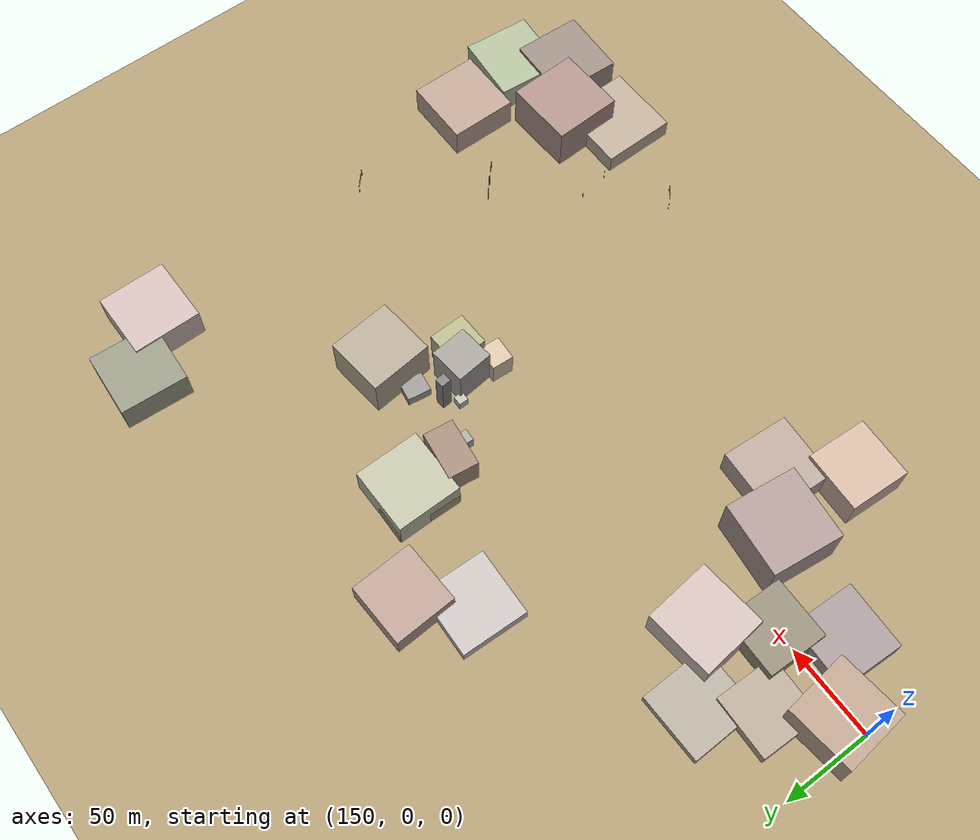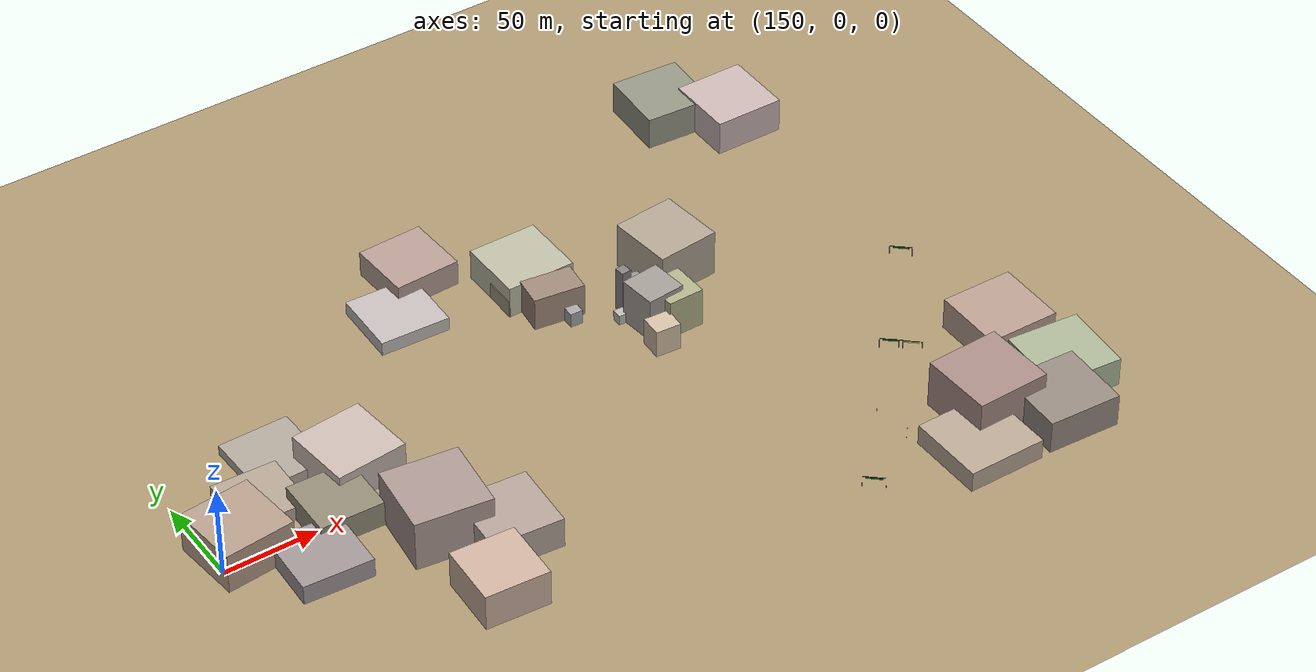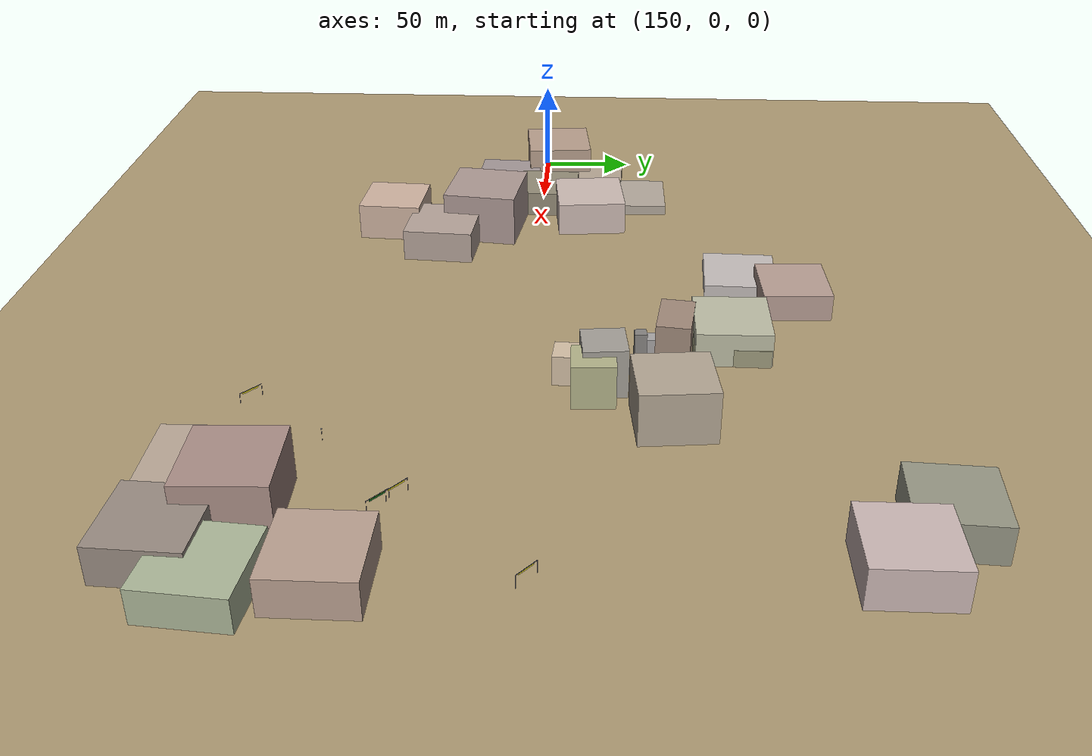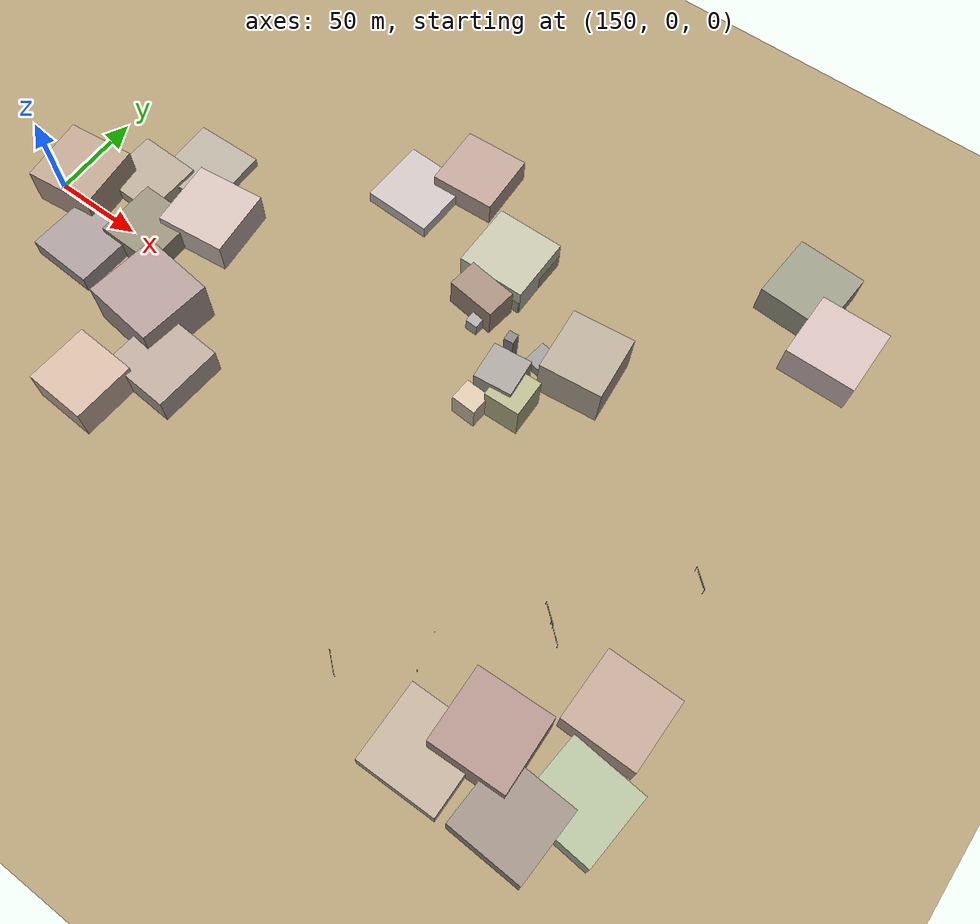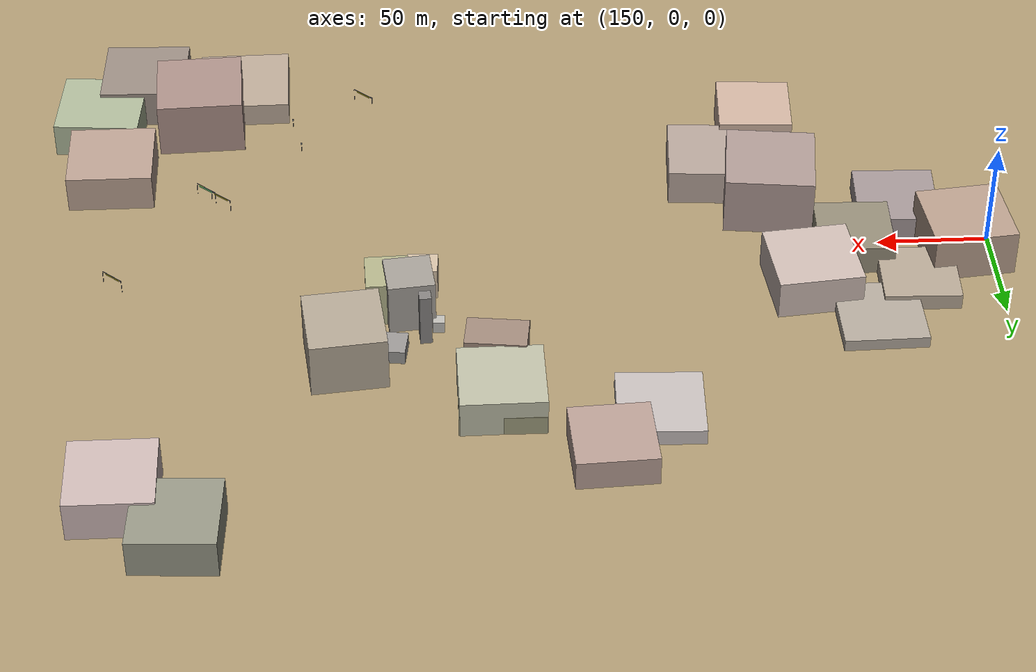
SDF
<sdf version="1.9">
 <world name="crossroad_world">
  <model name="ground_plane">
   <static>true</static>
   <pose>0 0 -0.05 0 0 0</pose>
   <link name="link">
    <collision name="collision">
     <geometry><plane><normal>0 0 1</normal><size>10000 10000</size></plane></geometry>
    </collision>
    <visual name="visual">
     <geometry><plane><normal>0 0 1</normal><size>15000 15000</size></plane></geometry>
     <material><ambient>0.68 0.60 0.45 1</ambient><diffuse>0.68 0.60 0.45 1</diffuse></material>
    </visual>
   </link>
  </model>
  <model name="tl_5">
   <static>true</static>
   <pose>464.175 -99.170 0 0 0 4.010</pose>
   <link name="link">
    <visual name="pole">
     <pose>0 0 2.750 0 0 0</pose>
     <geometry><cylinder><radius>0.06</radius><length>5.50</length></cylinder></geometry>
     <material><ambient>0.25 0.25 0.25 1</ambient><diffuse>0.25 0.25 0.25 1</diffuse></material>
    </visual>
    <visual name="housing">
     <pose>0 0 5.950 0 0 0</pose>
     <geometry><box><size>0.33 0.33 0.9</size></box></geometry>
     <material><ambient>0.08 0.08 0.08 1</ambient><diffuse>0.08 0.08 0.08 1</diffuse></material>
    </visual>
    <visual name="red">
     <pose>0 0 6.250 0 0 0</pose>
     <geometry><sphere><radius>0.09</radius></sphere></geometry>
     <material>
      <ambient>0.90 0.05 0.05 1</ambient>
      <diffuse>0.90 0.05 0.05 1</diffuse>
      <emissive>0.6 0 0 1</emissive>
     </material>
    </visual>
    <visual name="amber">
     <pose>0 0 5.950 0 0 0</pose>
     <geometry><sphere><radius>0.09</radius></sphere></geometry>
     <material><ambient>0.90 0.55 0.00 1</ambient><diffuse>0.90 0.55 0.00 1</diffuse></material>
    </visual>
    <visual name="green">
     <pose>0 0 5.650 0 0 0</pose>
     <geometry><sphere><radius>0.09</radius></sphere></geometry>
     <material><ambient>0.00 0.78 0.00 1</ambient><diffuse>0.00 0.78 0.00 1</diffuse></material>
    </visual>
    <collision name="col">
     <pose>0 0 2.750 0 0 0</pose>
     <geometry><cylinder><radius>0.06</radius><length>5.50</length></cylinder></geometry>
    </collision>
   </link>
  </model>
  <model name="tl_8">
   <static>true</static>
   <pose>460.105 -80.420 0 0 0 0.870</pose>
   <link name="link">
    <visual name="pole">
     <pose>0 0 2.750 0 0 0</pose>
     <geometry><cylinder><radius>0.06</radius><length>5.50</length></cylinder></geometry>
     <material><ambient>0.25 0.25 0.25 1</ambient><diffuse>0.25 0.25 0.25 1</diffuse></material>
    </visual>
    <visual name="housing">
     <pose>0 0 5.950 0 0 0</pose>
     <geometry><box><size>0.33 0.33 0.9</size></box></geometry>
     <material><ambient>0.08 0.08 0.08 1</ambient><diffuse>0.08 0.08 0.08 1</diffuse></material>
    </visual>
    <visual name="red">
     <pose>0 0 6.250 0 0 0</pose>
     <geometry><sphere><radius>0.09</radius></sphere></geometry>
     <material>
      <ambient>0.90 0.05 0.05 1</ambient>
      <diffuse>0.90 0.05 0.05 1</diffuse>
      <emissive>0.6 0 0 1</emissive>
     </material>
    </visual>
    <visual name="amber">
     <pose>0 0 5.950 0 0 0</pose>
     <geometry><sphere><radius>0.09</radius></sphere></geometry>
     <material><ambient>0.90 0.55 0.00 1</ambient><diffuse>0.90 0.55 0.00 1</diffuse></material>
    </visual>
    <visual name="green">
     <pose>0 0 5.650 0 0 0</pose>
     <geometry><sphere><radius>0.09</radius></sphere></geometry>
     <material><ambient>0.00 0.78 0.00 1</ambient><diffuse>0.00 0.78 0.00 1</diffuse></material>
    </visual>
    <collision name="col">
     <pose>0 0 2.750 0 0 0</pose>
     <geometry><cylinder><radius>0.06</radius><length>5.50</length></cylinder></geometry>
    </collision>
   </link>
  </model>
  <model name="gantry_40">
   <static>true</static>
   <pose>503.682 -48.896 0 0 0 2.421</pose>
   <link name="link">
    <visual name="post_l">
     <pose>-5.700 0 2.925 0 0 0</pose>
     <geometry><cylinder><radius>0.1</radius><length>5.85</length></cylinder></geometry>
     <material><ambient>0.30 0.30 0.35 1</ambient><diffuse>0.30 0.30 0.35 1</diffuse></material>
    </visual>
    <visual name="post_r">
     <pose>5.700 0 2.925 0 0 0</pose>
     <geometry><cylinder><radius>0.1</radius><length>5.85</length></cylinder></geometry>
     <material><ambient>0.30 0.30 0.35 1</ambient><diffuse>0.30 0.30 0.35 1</diffuse></material>
    </visual>
    <visual name="beam">
     <pose>0 0 6.000 0 0 0</pose>
     <geometry><box><size>11.400 0.22 0.22</size></box></geometry>
     <material><ambient>0.30 0.30 0.35 1</ambient><diffuse>0.30 0.30 0.35 1</diffuse></material>
    </visual>
    <visual name="sign_border">
     <pose>0 -0.14 5.450 0 0 0</pose>
     <geometry><box><size>8.288 0.04 0.92</size></box></geometry>
     <material><ambient>0.90 0.85 0.10 1</ambient><diffuse>0.90 0.85 0.10 1</diffuse></material>
    </visual>
    <visual name="sign_panel">
     <pose>0 -0.15 5.450 0 0 0</pose>
     <geometry><box><size>8.208 0.05 0.86</size></box></geometry>
     <material><ambient>0.05 0.38 0.10 1</ambient><diffuse>0.05 0.38 0.10 1</diffuse></material>
    </visual>
    <collision name="col_post_l">
     <pose>-5.700 0 2.925 0 0 0</pose>
     <geometry><cylinder><radius>0.1</radius><length>5.85</length></cylinder></geometry>
    </collision>
    <collision name="col_post_r">
     <pose>5.700 0 2.925 0 0 0</pose>
     <geometry><cylinder><radius>0.1</radius><length>5.85</length></cylinder></geometry>
    </collision>
    <collision name="col_beam">
     <pose>0 0 6.000 0 0 0</pose>
     <geometry><box><size>11.400 0.22 0.22</size></box></geometry>
    </collision>
   </link>
  </model>
  <model name="gantry_126">
   <static>true</static>
   <pose>543.331 12.423 0 0 0 -0.715</pose>
   <link name="link">
    <visual name="post_l">
     <pose>-5.700 0 2.925 0 0 0</pose>
     <geometry><cylinder><radius>0.1</radius><length>5.85</length></cylinder></geometry>
     <material><ambient>0.30 0.30 0.35 1</ambient><diffuse>0.30 0.30 0.35 1</diffuse></material>
    </visual>
    <visual name="post_r">
     <pose>5.700 0 2.925 0 0 0</pose>
     <geometry><cylinder><radius>0.1</radius><length>5.85</length></cylinder></geometry>
     <material><ambient>0.30 0.30 0.35 1</ambient><diffuse>0.30 0.30 0.35 1</diffuse></material>
    </visual>
    <visual name="beam">
     <pose>0 0 6.000 0 0 0</pose>
     <geometry><box><size>11.400 0.22 0.22</size></box></geometry>
     <material><ambient>0.30 0.30 0.35 1</ambient><diffuse>0.30 0.30 0.35 1</diffuse></material>
    </visual>
    <visual name="sign_border">
     <pose>0 -0.14 5.450 0 0 0</pose>
     <geometry><box><size>8.288 0.04 0.92</size></box></geometry>
     <material><ambient>0.90 0.85 0.10 1</ambient><diffuse>0.90 0.85 0.10 1</diffuse></material>
    </visual>
    <visual name="sign_panel">
     <pose>0 -0.15 5.450 0 0 0</pose>
     <geometry><box><size>8.208 0.05 0.86</size></box></geometry>
     <material><ambient>0.05 0.38 0.10 1</ambient><diffuse>0.05 0.38 0.10 1</diffuse></material>
    </visual>
    <collision name="col_post_l">
     <pose>-5.700 0 2.925 0 0 0</pose>
     <geometry><cylinder><radius>0.1</radius><length>5.85</length></cylinder></geometry>
    </collision>
    <collision name="col_post_r">
     <pose>5.700 0 2.925 0 0 0</pose>
     <geometry><cylinder><radius>0.1</radius><length>5.85</length></cylinder></geometry>
    </collision>
    <collision name="col_beam">
     <pose>0 0 6.000 0 0 0</pose>
     <geometry><box><size>11.400 0.22 0.22</size></box></geometry>
    </collision>
   </link>
  </model>
  <model name="gantry_127">
   <static>true</static>
   <pose>496.722 -42.423 0 0 0 -0.701</pose>
   <link name="link">
    <visual name="post_l">
     <pose>-5.700 0 2.925 0 0 0</pose>
     <geometry><cylinder><radius>0.1</radius><length>5.85</length></cylinder></geometry>
     <material><ambient>0.30 0.30 0.35 1</ambient><diffuse>0.30 0.30 0.35 1</diffuse></material>
    </visual>
    <visual name="post_r">
     <pose>5.700 0 2.925 0 0 0</pose>
     <geometry><cylinder><radius>0.1</radius><length>5.85</length></cylinder></geometry>
     <material><ambient>0.30 0.30 0.35 1</ambient><diffuse>0.30 0.30 0.35 1</diffuse></material>
    </visual>
    <visual name="beam">
     <pose>0 0 6.000 0 0 0</pose>
     <geometry><box><size>11.400 0.22 0.22</size></box></geometry>
     <material><ambient>0.30 0.30 0.35 1</ambient><diffuse>0.30 0.30 0.35 1</diffuse></material>
    </visual>
    <visual name="sign_border">
     <pose>0 -0.14 5.450 0 0 0</pose>
     <geometry><box><size>8.288 0.04 0.92</size></box></geometry>
     <material><ambient>0.90 0.85 0.10 1</ambient><diffuse>0.90 0.85 0.10 1</diffuse></material>
    </visual>
    <visual name="sign_panel">
     <pose>0 -0.15 5.450 0 0 0</pose>
     <geometry><box><size>8.208 0.05 0.86</size></box></geometry>
     <material><ambient>0.05 0.38 0.10 1</ambient><diffuse>0.05 0.38 0.10 1</diffuse></material>
    </visual>
    <collision name="col_post_l">
     <pose>-5.700 0 2.925 0 0 0</pose>
     <geometry><cylinder><radius>0.1</radius><length>5.85</length></cylinder></geometry>
    </collision>
    <collision name="col_post_r">
     <pose>5.700 0 2.925 0 0 0</pose>
     <geometry><cylinder><radius>0.1</radius><length>5.85</length></cylinder></geometry>
    </collision>
    <collision name="col_beam">
     <pose>0 0 6.000 0 0 0</pose>
     <geometry><box><size>11.400 0.22 0.22</size></box></geometry>
    </collision>
   </link>
  </model>
  <model name="gantry_143">
   <static>true</static>
   <pose>430.830 -118.551 0 0 0 -0.728</pose>
   <link name="link">
    <visual name="post_l">
     <pose>-5.700 0 2.925 0 0 0</pose>
     <geometry><cylinder><radius>0.1</radius><length>5.85</length></cylinder></geometry>
     <material><ambient>0.30 0.30 0.35 1</ambient><diffuse>0.30 0.30 0.35 1</diffuse></material>
    </visual>
    <visual name="post_r">
     <pose>5.700 0 2.925 0 0 0</pose>
     <geometry><cylinder><radius>0.1</radius><length>5.85</length></cylinder></geometry>
     <material><ambient>0.30 0.30 0.35 1</ambient><diffuse>0.30 0.30 0.35 1</diffuse></material>
    </visual>
    <visual name="beam">
     <pose>0 0 6.000 0 0 0</pose>
     <geometry><box><size>11.400 0.22 0.22</size></box></geometry>
     <material><ambient>0.30 0.30 0.35 1</ambient><diffuse>0.30 0.30 0.35 1</diffuse></material>
    </visual>
    <visual name="sign_border">
     <pose>0 -0.14 5.450 0 0 0</pose>
     <geometry><box><size>8.288 0.04 0.92</size></box></geometry>
     <material><ambient>0.90 0.85 0.10 1</ambient><diffuse>0.90 0.85 0.10 1</diffuse></material>
    </visual>
    <visual name="sign_panel">
     <pose>0 -0.15 5.450 0 0 0</pose>
     <geometry><box><size>8.208 0.05 0.86</size></box></geometry>
     <material><ambient>0.05 0.38 0.10 1</ambient><diffuse>0.05 0.38 0.10 1</diffuse></material>
    </visual>
    <collision name="col_post_l">
     <pose>-5.700 0 2.925 0 0 0</pose>
     <geometry><cylinder><radius>0.1</radius><length>5.85</length></cylinder></geometry>
    </collision>
    <collision name="col_post_r">
     <pose>5.700 0 2.925 0 0 0</pose>
     <geometry><cylinder><radius>0.1</radius><length>5.85</length></cylinder></geometry>
    </collision>
    <collision name="col_beam">
     <pose>0 0 6.000 0 0 0</pose>
     <geometry><box><size>11.400 0.22 0.22</size></box></geometry>
    </collision>
   </link>
  </model>
  <model name="building_95">
   <static>true</static>
   <pose>186.361 29.751 3.723 0 0 -0.032</pose>
   <link name="link">
    <visual name="body">
     <geometry><box><size>34.24 34.01 7.45</size></box></geometry>
     <material><ambient>0.71 0.65 0.58 1</ambient><diffuse>0.71 0.65 0.58 1</diffuse></material>
    </visual>
    <collision name="col"><geometry><box><size>34.24 34.01 7.45</size></box></geometry></collision>
   </link>
  </model>
  <model name="building_117">
   <static>true</static>
   <pose>534.660 150.714 9.436 0 0 -0.001</pose>
   <link name="link">
    <visual name="body">
     <geometry><box><size>37.50 37.63 18.87</size></box></geometry>
     <material><ambient>0.80 0.72 0.71 1</ambient><diffuse>0.80 0.72 0.71 1</diffuse></material>
    </visual>
    <collision name="col"><geometry><box><size>37.50 37.63 18.87</size></box></geometry></collision>
   </link>
  </model>
  <model name="building_125">
   <static>true</static>
   <pose>405.925 21.459 7.586 0 0 -0.063</pose>
   <link name="link">
    <visual name="body">
     <geometry><box><size>13.51 12.02 15.17</size></box></geometry>
     <material><ambient>0.83 0.75 0.65 1</ambient><diffuse>0.83 0.75 0.65 1</diffuse></material>
    </visual>
    <collision name="col"><geometry><box><size>13.51 12.02 15.17</size></box></geometry></collision>
   </link>
  </model>
  <model name="building_126">
   <static>true</static>
   <pose>375.483 72.565 9.054 0 0 -0.130</pose>
   <link name="link">
    <visual name="body">
     <geometry><box><size>27.08 16.66 18.11</size></box></geometry>
     <material><ambient>0.63 0.54 0.48 1</ambient><diffuse>0.63 0.54 0.48 1</diffuse></material>
    </visual>
    <collision name="col"><geometry><box><size>27.08 16.66 18.11</size></box></geometry></collision>
   </link>
  </model>
  <model name="building_127">
   <static>true</static>
   <pose>380.083 61.159 3.956 0 0 -0.043</pose>
   <link name="link">
    <visual name="body">
     <geometry><box><size>6.72 6.99 7.91</size></box></geometry>
     <material><ambient>0.66 0.65 0.65 1</ambient><diffuse>0.66 0.65 0.65 1</diffuse></material>
    </visual>
    <collision name="col"><geometry><box><size>6.72 6.99 7.91</size></box></geometry></collision>
   </link>
  </model>
  <model name="building_184">
   <static>true</static>
   <pose>412.060 38.689 12.229 0 0 0.101</pose>
   <link name="link">
    <visual name="body">
     <geometry><box><size>20.59 20.65 24.46</size></box></geometry>
     <material><ambient>0.64 0.62 0.59 1</ambient><diffuse>0.64 0.62 0.59 1</diffuse></material>
    </visual>
    <collision name="col"><geometry><box><size>20.59 20.65 24.46</size></box></geometry></collision>
   </link>
  </model>
  <model name="building_185">
   <static>true</static>
   <pose>421.466 34.188 10.839 0 0 0.026</pose>
   <link name="link">
    <visual name="body">
     <geometry><box><size>19.31 20.37 21.68</size></box></geometry>
     <material><ambient>0.70 0.70 0.54 1</ambient><diffuse>0.70 0.70 0.54 1</diffuse></material>
    </visual>
    <collision name="col"><geometry><box><size>19.31 20.37 21.68</size></box></geometry></collision>
   </link>
  </model>
  <model name="building_186">
   <static>true</static>
   <pose>419.352 63.655 3.175 0 0 -0.149</pose>
   <link name="link">
    <visual name="body">
     <geometry><box><size>10.93 12.93 6.35</size></box></geometry>
     <material><ambient>0.60 0.59 0.58 1</ambient><diffuse>0.60 0.59 0.58 1</diffuse></material>
    </visual>
    <collision name="col"><geometry><box><size>10.93 12.93 6.35</size></box></geometry></collision>
   </link>
  </model>
  <model name="building_188">
   <static>true</static>
   <pose>405.532 55.113 12.533 0 0 0.078</pose>
   <link name="link">
    <visual name="body">
     <geometry><box><size>5.21 5.51 25.07</size></box></geometry>
     <material><ambient>0.52 0.51 0.50 1</ambient><diffuse>0.52 0.51 0.50 1</diffuse></material>
    </visual>
    <collision name="col"><geometry><box><size>5.21 5.51 25.07</size></box></geometry></collision>
   </link>
  </model>
  <model name="building_189">
   <static>true</static>
   <pose>399.712 48.548 2.769 0 0 -0.025</pose>
   <link name="link">
    <visual name="body">
     <geometry><box><size>5.09 5.34 5.54</size></box></geometry>
     <material><ambient>0.74 0.73 0.71 1</ambient><diffuse>0.74 0.73 0.71 1</diffuse></material>
    </visual>
    <collision name="col"><geometry><box><size>5.09 5.34 5.54</size></box></geometry></collision>
   </link>
  </model>
  <model name="building_190">
   <static>true</static>
   <pose>405.439 42.868 5.033 0 0 0.101</pose>
   <link name="link">
    <visual name="body">
     <geometry><box><size>5.19 5.43 10.07</size></box></geometry>
     <material><ambient>0.62 0.61 0.55 1</ambient><diffuse>0.62 0.61 0.55 1</diffuse></material>
    </visual>
    <collision name="col"><geometry><box><size>5.19 5.43 10.07</size></box></geometry></collision>
   </link>
  </model>
  <model name="building_397">
   <static>true</static>
   <pose>308.477 108.647 3.697 0 0 -0.038</pose>
   <link name="link">
    <visual name="body">
     <geometry><box><size>37.31 36.86 7.39</size></box></geometry>
     <material><ambient>0.77 0.74 0.73 1</ambient><diffuse>0.77 0.74 0.73 1</diffuse></material>
    </visual>
    <collision name="col"><geometry><box><size>37.31 36.86 7.39</size></box></geometry></collision>
   </link>
  </model>
  <model name="building_519">
   <static>true</static>
   <pose>271.774 -51.753 8.411 0 0 -0.070</pose>
   <link name="link">
    <visual name="body">
     <geometry><box><size>37.37 37.31 16.82</size></box></geometry>
     <material><ambient>0.71 0.64 0.60 1</ambient><diffuse>0.71 0.64 0.60 1</diffuse></material>
    </visual>
    <collision name="col"><geometry><box><size>37.37 37.31 16.82</size></box></geometry></collision>
   </link>
  </model>
  <model name="building_520">
   <static>true</static>
   <pose>246.306 -30.158 13.725 0 0 -0.122</pose>
   <link name="link">
    <visual name="body">
     <geometry><box><size>40.25 39.81 27.45</size></box></geometry>
     <material><ambient>0.68 0.60 0.58 1</ambient><diffuse>0.68 0.60 0.58 1</diffuse></material>
    </visual>
    <collision name="col"><geometry><box><size>40.25 39.81 27.45</size></box></geometry></collision>
   </link>
  </model>
  <model name="building_521">
   <static>true</static>
   <pose>162.534 7.370 10.875 0 0 0.103</pose>
   <link name="link">
    <visual name="body">
     <geometry><box><size>37.52 37.06 21.75</size></box></geometry>
     <material><ambient>0.72 0.62 0.55 1</ambient><diffuse>0.72 0.62 0.55 1</diffuse></material>
    </visual>
    <collision name="col"><geometry><box><size>37.52 37.06 21.75</size></box></geometry></collision>
   </link>
  </model>
  <model name="building_522">
   <static>true</static>
   <pose>189.155 -21.529 5.249 0 0 -0.051</pose>
   <link name="link">
    <visual name="body">
     <geometry><box><size>36.56 36.08 10.50</size></box></geometry>
     <material><ambient>0.64 0.59 0.59 1</ambient><diffuse>0.64 0.59 0.59 1</diffuse></material>
    </visual>
    <collision name="col"><geometry><box><size>36.56 36.08 10.50</size></box></geometry></collision>
   </link>
  </model>
  <model name="building_523">
   <static>true</static>
   <pose>206.893 53.267 2.729 0 0 0.015</pose>
   <link name="link">
    <visual name="body">
     <geometry><box><size>37.25 38.21 5.46</size></box></geometry>
     <material><ambient>0.70 0.66 0.61 1</ambient><diffuse>0.70 0.66 0.61 1</diffuse></material>
    </visual>
    <collision name="col"><geometry><box><size>37.25 38.21 5.46</size></box></geometry></collision>
   </link>
  </model>
  <model name="building_524">
   <static>true</static>
   <pose>212.011 3.718 6.849 0 0 -0.026</pose>
   <link name="link">
    <visual name="body">
     <geometry><box><size>33.70 33.51 13.70</size></box></geometry>
     <material><ambient>0.58 0.55 0.47 1</ambient><diffuse>0.58 0.55 0.47 1</diffuse></material>
    </visual>
    <collision name="col"><geometry><box><size>33.70 33.51 13.70</size></box></geometry></collision>
   </link>
  </model>
  <model name="building_525">
   <static>true</static>
   <pose>233.970 28.371 9.116 0 0 0.099</pose>
   <link name="link">
    <visual name="body">
     <geometry><box><size>38.05 37.40 18.23</size></box></geometry>
     <material><ambient>0.80 0.73 0.70 1</ambient><diffuse>0.80 0.73 0.70 1</diffuse></material>
    </visual>
    <collision name="col"><geometry><box><size>38.05 37.40 18.23</size></box></geometry></collision>
   </link>
  </model>
  <model name="building_642">
   <static>true</static>
   <pose>534.345 -126.858 8.900 0 0 -0.045</pose>
   <link name="link">
    <visual name="body">
     <geometry><box><size>39.18 38.62 17.80</size></box></geometry>
     <material><ambient>0.60 0.55 0.51 1</ambient><diffuse>0.60 0.55 0.51 1</diffuse></material>
    </visual>
    <collision name="col"><geometry><box><size>39.18 38.62 17.80</size></box></geometry></collision>
   </link>
  </model>
  <model name="building_643">
   <static>true</static>
   <pose>554.028 -103.899 7.983 0 0 -0.088</pose>
   <link name="link">
    <visual name="body">
     <geometry><box><size>39.18 38.62 15.97</size></box></geometry>
     <material><ambient>0.68 0.72 0.60 1</ambient><diffuse>0.68 0.72 0.60 1</diffuse></material>
    </visual>
    <collision name="col"><geometry><box><size>39.18 38.62 15.97</size></box></geometry></collision>
   </link>
  </model>
  <model name="building_653">
   <static>true</static>
   <pose>374.645 99.256 8.649 0 0 0.005</pose>
   <link name="link">
    <visual name="body">
     <geometry><box><size>37.00 36.21 17.30</size></box></geometry>
     <material><ambient>0.74 0.74 0.65 1</ambient><diffuse>0.74 0.74 0.65 1</diffuse></material>
    </visual>
    <collision name="col"><geometry><box><size>37.00 36.21 17.30</size></box></geometry></collision>
   </link>
  </model>
  <model name="building_654">
   <static>true</static>
   <pose>374.645 99.256 4.556 0 0 -0.019</pose>
   <link name="link">
    <visual name="body">
     <geometry><box><size>37.00 36.21 9.11</size></box></geometry>
     <material><ambient>0.62 0.61 0.49 1</ambient><diffuse>0.62 0.61 0.49 1</diffuse></material>
    </visual>
    <collision name="col"><geometry><box><size>37.00 36.21 9.11</size></box></geometry></collision>
   </link>
  </model>
  <model name="building_670">
   <static>true</static>
   <pose>508.138 173.329 8.892 0 0 -0.061</pose>
   <link name="link">
    <visual name="body">
     <geometry><box><size>36.96 37.13 17.78</size></box></geometry>
     <material><ambient>0.59 0.59 0.52 1</ambient><diffuse>0.59 0.59 0.52 1</diffuse></material>
    </visual>
    <collision name="col"><geometry><box><size>36.96 37.13 17.78</size></box></geometry></collision>
   </link>
  </model>
  <model name="building_696">
   <static>true</static>
   <pose>507.257 -103.981 13.039 0 0 0.035</pose>
   <link name="link">
    <visual name="body">
     <geometry><box><size>39.61 38.90 26.08</size></box></geometry>
     <material><ambient>0.67 0.56 0.53 1</ambient><diffuse>0.67 0.56 0.53 1</diffuse></material>
    </visual>
    <collision name="col"><geometry><box><size>39.61 38.90 26.08</size></box></geometry></collision>
   </link>
  </model>
  <model name="building_697">
   <static>true</static>
   <pose>487.334 -125.541 5.527 0 0 0.012</pose>
   <link name="link">
    <visual name="body">
     <geometry><box><size>41.90 41.47 11.05</size></box></geometry>
     <material><ambient>0.73 0.66 0.59 1</ambient><diffuse>0.73 0.66 0.59 1</diffuse></material>
    </visual>
    <collision name="col"><geometry><box><size>41.90 41.47 11.05</size></box></geometry></collision>
   </link>
  </model>
  <model name="building_699">
   <static>true</static>
   <pose>546.992 -62.388 8.664 0 0 -0.005</pose>
   <link name="link">
    <visual name="body">
     <geometry><box><size>38.93 38.05 17.33</size></box></geometry>
     <material><ambient>0.73 0.63 0.57 1</ambient><diffuse>0.73 0.63 0.57 1</diffuse></material>
    </visual>
    <collision name="col"><geometry><box><size>38.93 38.05 17.33</size></box></geometry></collision>
   </link>
  </model>
  <model name="building_711">
   <static>true</static>
   <pose>330.375 133.717 7.021 0 0 0.045</pose>
   <link name="link">
    <visual name="body">
     <geometry><box><size>35.13 34.49 14.04</size></box></geometry>
     <material><ambient>0.72 0.62 0.58 1</ambient><diffuse>0.72 0.62 0.58 1</diffuse></material>
    </visual>
    <collision name="col"><geometry><box><size>35.13 34.49 14.04</size></box></geometry></collision>
   </link>
  </model>
  <model name="building_713">
   <static>true</static>
   <pose>440.239 69.368 12.822 0 0 0.101</pose>
   <link name="link">
    <visual name="body">
     <geometry><box><size>33.53 35.30 25.64</size></box></geometry>
     <material><ambient>0.70 0.65 0.58 1</ambient><diffuse>0.70 0.65 0.58 1</diffuse></material>
    </visual>
    <collision name="col"><geometry><box><size>33.53 35.30 25.64</size></box></geometry></collision>
   </link>
  </model>
  <model name="building_717">
   <static>true</static>
   <pose>247.467 -82.332 9.871 0 0 -0.058</pose>
   <link name="link">
    <visual name="body">
     <geometry><box><size>33.75 34.09 19.74</size></box></geometry>
     <material><ambient>0.81 0.70 0.63 1</ambient><diffuse>0.81 0.70 0.63 1</diffuse></material>
    </visual>
    <collision name="col"><geometry><box><size>33.75 34.09 19.74</size></box></geometry></collision>
   </link>
  </model>
 </world>
</sdf>
